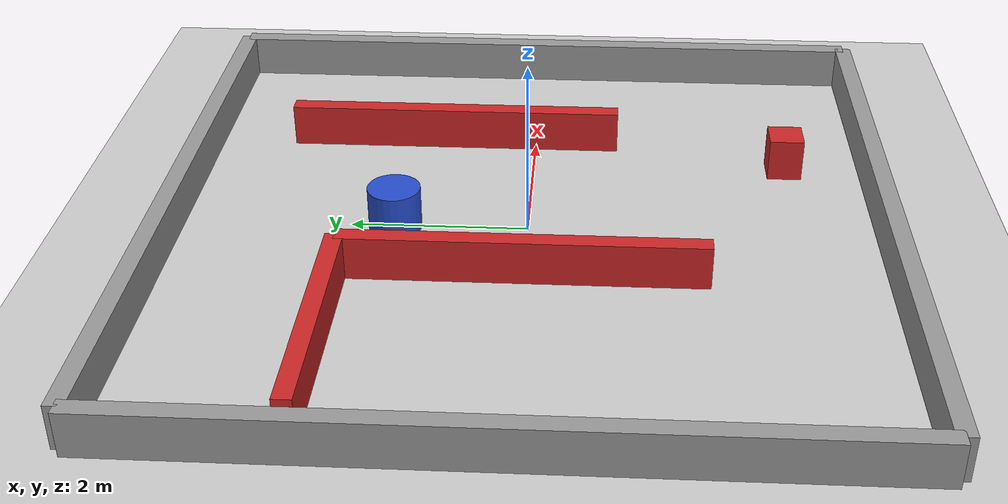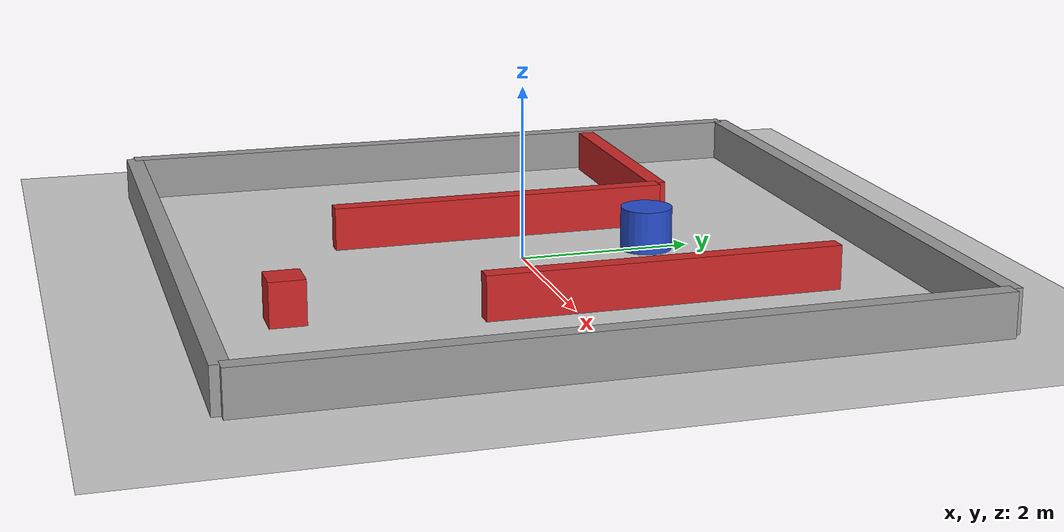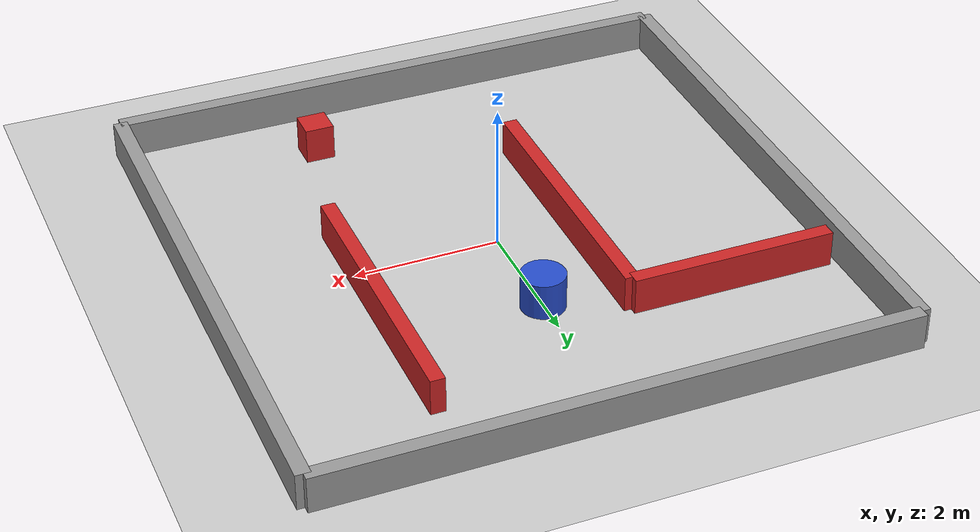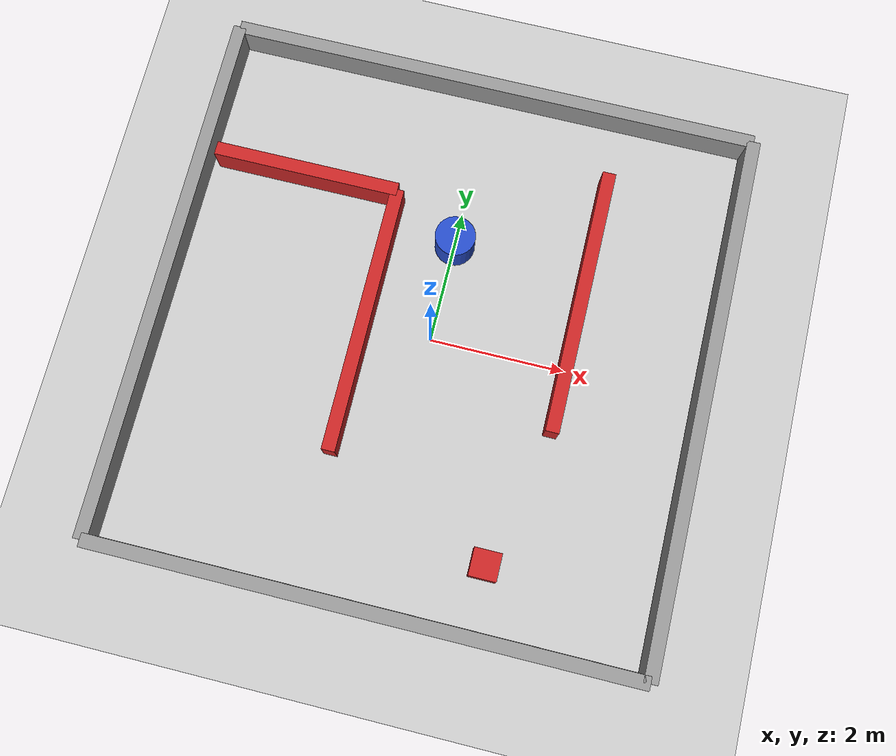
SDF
<?xml version="1.0"?>
<sdf version="1.6">
  <world name="default">

    <!-- 基础环境 -->
    <include><uri>model://ground_plane</uri></include>
    <include><uri>model://sun</uri></include>
    <scene><shadows>false</shadows></scene>

    <gui fullscreen='0'>
      <camera name='user_camera'>
        <pose>0 0 15 0 1.57 0</pose>
        <view_controller>orbit</view_controller>
        <projection_type>perspective</projection_type>
      </camera>
    </gui>

    <!-- 物理引擎 -->
    <physics type="ode">
      <real_time_update_rate>500.0</real_time_update_rate>
      <max_step_size>0.002</max_step_size>
      <real_time_factor>1</real_time_factor>
    </physics>

    <!-- 加载 gazebo_ros_state 插件以提供 /set_entity_state 等服务 -->
    <plugin name="gazebo_ros_state" filename="libgazebo_ros_state.so">
    </plugin>

    <!-- === 四面外墙（灰色）=== -->

    <!-- 下外墙 -->
    <model name="outer_wall_bottom">
      <static>1</static>
      <link name="link">
        <collision name="collision">
          <geometry><box><size>8.0 0.2 0.5</size></box></geometry>
        </collision>
        <visual name="visual">
          <geometry><box><size>8.0 0.2 0.5</size></box></geometry>
          <material>
            <script>
              <uri>file://media/materials/scripts/gazebo.material</uri>
              <name>Gazebo/Gray</name>
            </script>
          </material>
        </visual>
      </link>
      <pose>0 -4 0.25 0 0 0</pose>
    </model>

    <!-- 上外墙 -->
    <model name="outer_wall_top">
      <static>1</static>
      <link name="link">
        <collision name="collision">
          <geometry><box><size>8.0 0.2 0.5</size></box></geometry>
        </collision>
        <visual name="visual">
          <geometry><box><size>8.0 0.2 0.5</size></box></geometry>
          <material><script><uri>file://media/materials/scripts/gazebo.material</uri><name>Gazebo/Gray</name></script></material>
        </visual>
      </link>
      <pose>0 4 0.25 0 0 0</pose>
    </model>

    <!-- 左外墙 -->
    <model name="outer_wall_left">
      <static>1</static>
      <link name="link">
        <collision name="collision">
          <geometry><box><size>0.2 8.0 0.5</size></box></geometry>
        </collision>
        <visual name="visual">
          <geometry><box><size>0.2 8.0 0.5</size></box></geometry>
          <material><script><uri>file://media/materials/scripts/gazebo.material</uri><name>Gazebo/Gray</name></script></material>
        </visual>
      </link>
      <pose>-4 0 0.25 0 0 0</pose>
    </model>

    <!-- 右外墙 -->
    <model name="outer_wall_right">
      <static>1</static>
      <link name="link">
        <collision name="collision">
          <geometry><box><size>0.2 8.0 0.5</size></box></geometry>
        </collision>
        <visual name="visual">
          <geometry><box><size>0.2 8.0 0.5</size></box></geometry>
          <material><script><uri>file://media/materials/scripts/gazebo.material</uri><name>Gazebo/Gray</name></script></material>
        </visual>
      </link>
      <pose>4 0 0.25 0 0 0</pose>
    </model>

    <!-- === 三面内墙（红色），形成 S 形走廊 === -->

    <!-- 内墙 A：水平，y=2，x=-3.8 到 x=-1 -->
    <model name="inner_wall_A">
      <static>1</static>
      <link name="link">
        <collision name="collision">
          <geometry><box><size>2.8 0.2 0.5</size></box></geometry>
        </collision>
        <visual name="visual">
          <geometry><box><size>2.8 0.2 0.5</size></box></geometry>
          <material><script><uri>file://media/materials/scripts/gazebo.material</uri><name>Gazebo/Red</name></script></material>
        </visual>
      </link>
      <pose>-2.4 2 0.25 0 0 0</pose>
    </model>

    <!-- 内墙 B：竖直，x=-1，y=-2 到 y=2（底部留通道，方便机器人出起点） -->
    <model name="inner_wall_B">
      <static>1</static>
      <link name="link">
        <collision name="collision">
          <geometry><box><size>0.2 4.0 0.5</size></box></geometry>
        </collision>
        <visual name="visual">
          <geometry><box><size>0.2 4.0 0.5</size></box></geometry>
          <material><script><uri>file://media/materials/scripts/gazebo.material</uri><name>Gazebo/Red</name></script></material>
        </visual>
      </link>
      <pose>-1 0 0.25 0 0 0</pose>
    </model>

    <!-- 内墙 C：竖直，x=2，y=-1 到 y=3（顶部留 1m 通道让机器人绕过） -->
    <model name="inner_wall_C">
      <static>1</static>
      <link name="link">
        <collision name="collision">
          <geometry><box><size>0.2 4.0 0.5</size></box></geometry>
        </collision>
        <visual name="visual">
          <geometry><box><size>0.2 4.0 0.5</size></box></geometry>
          <material><script><uri>file://media/materials/scripts/gazebo.material</uri><name>Gazebo/Red</name></script></material>
        </visual>
      </link>
      <pose>2 1 0.25 0 0 0</pose>
    </model>

    <!-- 静态障碍物：蓝色圆柱体 -->
    <model name="cylinder_obstacle">
      <static>1</static>
      <link name="link">
        <collision name="collision">
          <geometry><cylinder><radius>0.3</radius><length>0.5</length></cylinder></geometry>
        </collision>
        <visual name="visual">
          <geometry><cylinder><radius>0.3</radius><length>0.5</length></cylinder></geometry>
          <material><script><uri>file://media/materials/scripts/gazebo.material</uri><name>Gazebo/Blue</name></script></material>
        </visual>
      </link>
      <pose>0 1.5 0.25 0 0 0</pose>
    </model>

    <!-- 动态障碍物：沿Y轴来回移动的红色方块 -->
    <model name="moving_box">
      <pose>1.5 -3.0 0.25 0 0 0</pose>
      <link name="link">
        <gravity>false</gravity>
        <collision name="collision">
          <geometry><box><size>0.4 0.4 0.5</size></box></geometry>
        </collision>
        <visual name="visual">
          <geometry><box><size>0.4 0.4 0.5</size></box></geometry>
          <material><script><uri>file://media/materials/scripts/gazebo.material</uri><name>Gazebo/Red</name></script></material>
        </visual>
        <inertial>
          <mass>1.0</mass>
          <inertia>
            <ixx>0.034</ixx><ixy>0.0</ixy><ixz>0.0</ixz>
            <iyy>0.034</iyy><iyz>0.0</iyz>
            <izz>0.027</izz>
          </inertia>
        </inertial>
      </link>
    </model>

  </world>
</sdf>
